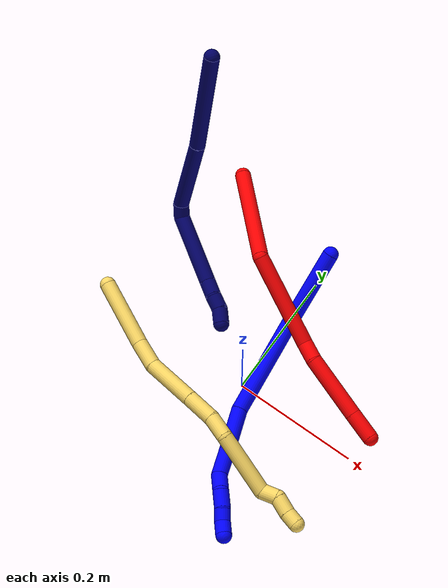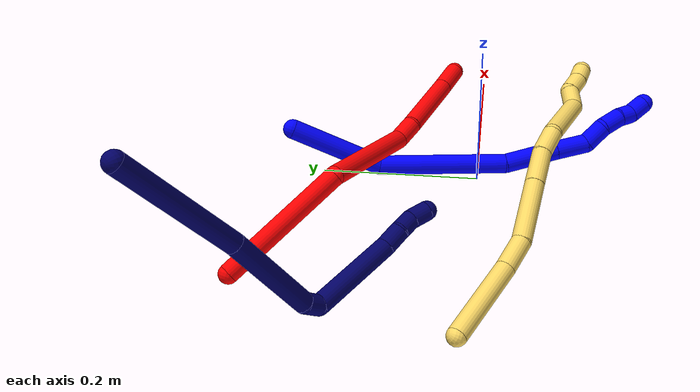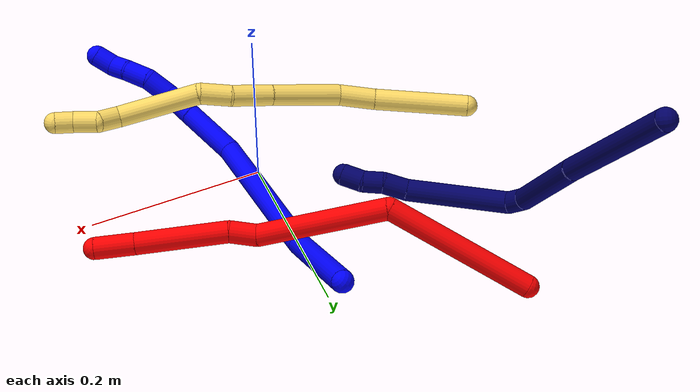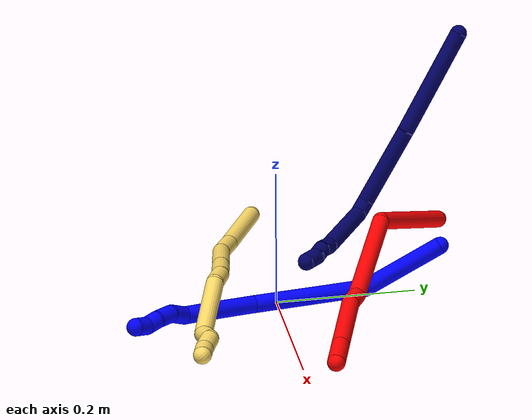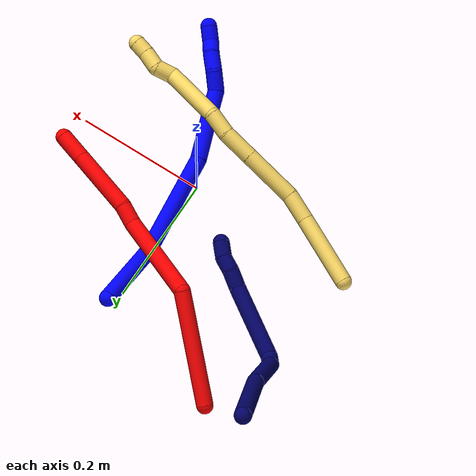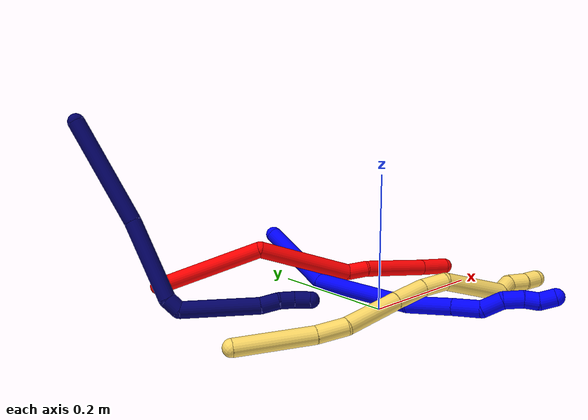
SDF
<sdf version="1.7">
 <world name="default">
  <model name="photoneo_s_sensor">
   <static>1</static>
   <pose>0 0 2 1.57079 1.57079 3.14159</pose>
   <link name="link">
    <inertial><mass>0.1</mass></inertial>
    <sensor name="sensor" type="depth">
     <update_rate>30</update_rate>
     <camera>
      <horizontal_fov>1.22</horizontal_fov>
      <image><width>1920</width><height>1200</height><format>B8G8R8</format></image>
      <clip><near>0.1</near><far>4</far></clip>
      <depth_camera><output>points</output></depth_camera>
     </camera>
     <plugin name="camera_plugin" filename="libgazebo_ros_depth_camera.so">
      <baseline>0.2</baseline>
      <alwaysOn>1</alwaysOn>
      <updateRate>0.0</updateRate>
      <cameraName>camera_ir</cameraName>
      <imageTopicName>/camera/color/image_raw</imageTopicName>
      <cameraInfoTopicName>/camera/color/camera_info</cameraInfoTopicName>
      <depthImageTopicName>/camera/depth/image_raw</depthImageTopicName>
      <depthImageCameraInfoTopicName>/camera/depth/camera_info</depthImageCameraInfoTopicName>
      <pointCloudTopicName>/camera/depth/points</pointCloudTopicName>
      <frameName>fr_optical</frameName>
      <pointCloudCutoff>0.1</pointCloudCutoff>
      <pointCloudCutoffMax>2.0</pointCloudCutoffMax>
      <distortionK1>0</distortionK1>
      <distortionK2>0</distortionK2>
      <distortionK3>0</distortionK3>
      <distortionT1>0</distortionT1>
      <distortionT2>0</distortionT2>
      <CxPrime>0</CxPrime>
      <Cx>0</Cx>
      <Cy>0</Cy>
      <focalLength>0</focalLength>
      <hackBaseline>0</hackBaseline>
     </plugin>
    </sensor>
   </link>
  </model>
  <model name="bin">
   <static>1</static>
   <link name="bottom">
    <collision name="collision-bottom">
     <pose>0 0 -0.01 0 -0 0</pose>
     <geometry><box><size>0.8 0.6 0.02</size></box></geometry>
     <surface>
      <friction><ode><mu>100</mu><mu2>100</mu2></ode></friction>
      <contact><collide_bitmask>65535</collide_bitmask></contact>
     </surface>
    </collision>
   </link>
   <link name="west_wall">
    <collision name="collision-west_wall">
     <pose>-0.41 0 0.1 0 -0 0</pose>
     <geometry><box><size>0.02 0.6 0.2</size></box></geometry>
     <surface>
      <friction><ode><mu>100</mu><mu2>100</mu2></ode></friction>
      <contact><collide_bitmask>65535</collide_bitmask></contact>
     </surface>
    </collision>
   </link>
   <link name="east_wall">
    <collision name="collision-east_wall">
     <pose>0.41 0 0.1 0 -0 0</pose>
     <geometry><box><size>0.02 0.6 0.2</size></box></geometry>
     <surface>
      <friction><ode><mu>100</mu><mu2>100</mu2></ode></friction>
      <contact><collide_bitmask>65535</collide_bitmask></contact>
     </surface>
    </collision>
   </link>
   <link name="south_wall">
    <collision name="collision-south_wall">
     <pose>0 -0.31 0.1 0 -0 0</pose>
     <geometry><box><size>0.8 0.02 0.2</size></box></geometry>
     <surface>
      <friction><ode><mu>100</mu><mu2>100</mu2></ode></friction>
      <contact><collide_bitmask>65535</collide_bitmask></contact>
     </surface>
    </collision>
   </link>
   <link name="north_wall">
    <collision name="collision-north_wall">
     <pose>0 0.31 0.1 0 -0 0</pose>
     <geometry><box><size>0.8 0.02 0.2</size></box></geometry>
     <surface>
      <friction><ode><mu>100</mu><mu2>100</mu2></ode></friction>
      <contact><collide_bitmask>65535</collide_bitmask></contact>
     </surface>
    </collision>
   </link>
  </model>
  <model name="1">
   <static>0</static>
   <link name="1">
    <collision name="collision-cylinder-e_1_1_4">
     <pose>-0.017609 -0.057924 0.006851 1.45307 -0.2932 -0.260957</pose>
     <geometry><cylinder><radius>0.0125</radius><length>0.121856</length></cylinder></geometry>
     <surface>
      <friction><ode><mu>1.16</mu><mu2>1.16</mu2><slip1>0</slip1><slip2>0</slip2></ode></friction>
      <contact><ode><kp>1e+06</kp><kd>1</kd><max_vel>0</max_vel><min_depth>0.001</min_depth></ode></contact>
     </surface>
    </collision>
    <visual name="visual-cylinder-e_1_1_4">
     <pose>-0.017609 -0.057924 0.006851 1.45307 -0.2932 -0.260957</pose>
     <geometry><cylinder><radius>0.0125</radius><length>0.121856</length></cylinder></geometry>
     <material><ambient>0 0 1 1</ambient></material>
    </visual>
    <collision name="collision-cylinder-e_2_4_5">
     <pose>-0.041423 -0.193742 -0.01206 1.89021 -0.075479 -0.104418</pose>
     <geometry><cylinder><radius>0.0125</radius><length>0.164555</length></cylinder></geometry>
     <surface>
      <friction><ode><mu>1.16</mu><mu2>1.16</mu2><slip1>0</slip1><slip2>0</slip2></ode></friction>
      <contact><ode><kp>1e+06</kp><kd>1</kd><max_vel>0</max_vel><min_depth>0.001</min_depth></ode></contact>
     </surface>
    </collision>
    <visual name="visual-cylinder-e_2_4_5">
     <pose>-0.041423 -0.193742 -0.01206 1.89021 -0.075479 -0.104418</pose>
     <geometry><cylinder><radius>0.0125</radius><length>0.164555</length></cylinder></geometry>
     <material><ambient>0 0 1 1</ambient></material>
    </visual>
    <collision name="collision-cylinder-e_3_5_6">
     <pose>-0.053959 -0.300524 -0.055786 2.12709 -0.184014 -0.329042</pose>
     <geometry><cylinder><radius>0.0125</radius><length>0.069204</length></cylinder></geometry>
     <surface>
      <friction><ode><mu>1.16</mu><mu2>1.16</mu2><slip1>0</slip1><slip2>0</slip2></ode></friction>
      <contact><ode><kp>1e+06</kp><kd>1</kd><max_vel>0</max_vel><min_depth>0.001</min_depth></ode></contact>
     </surface>
    </collision>
    <visual name="visual-cylinder-e_3_5_6">
     <pose>-0.053959 -0.300524 -0.055786 2.12709 -0.184014 -0.329042</pose>
     <geometry><cylinder><radius>0.0125</radius><length>0.069204</length></cylinder></geometry>
     <material><ambient>0 0 1 1</ambient></material>
    </visual>
    <collision name="collision-cylinder-e_4_6_7">
     <pose>-0.064103 -0.347033 -0.083996 2.09756 -0.184931 -0.319652</pose>
     <geometry><cylinder><radius>0.0125</radius><length>0.041474</length></cylinder></geometry>
     <surface>
      <friction><ode><mu>1.16</mu><mu2>1.16</mu2><slip1>0</slip1><slip2>0</slip2></ode></friction>
      <contact><ode><kp>1e+06</kp><kd>1</kd><max_vel>0</max_vel><min_depth>0.001</min_depth></ode></contact>
     </surface>
    </collision>
    <visual name="visual-cylinder-e_4_6_7">
     <pose>-0.064103 -0.347033 -0.083996 2.09756 -0.184931 -0.319652</pose>
     <geometry><cylinder><radius>0.0125</radius><length>0.041474</length></cylinder></geometry>
     <material><ambient>0 0 1 1</ambient></material>
    </visual>
    <collision name="collision-cylinder-e_5_7_8">
     <pose>-0.070366 -0.371959 -0.10748 2.63724 -0.16064 -0.605591</pose>
     <geometry><cylinder><radius>0.0125</radius><length>0.030633</length></cylinder></geometry>
     <surface>
      <friction><ode><mu>1.16</mu><mu2>1.16</mu2><slip1>0</slip1><slip2>0</slip2></ode></friction>
      <contact><ode><kp>1e+06</kp><kd>1</kd><max_vel>0</max_vel><min_depth>0.001</min_depth></ode></contact>
     </surface>
    </collision>
    <visual name="visual-cylinder-e_5_7_8">
     <pose>-0.070366 -0.371959 -0.10748 2.63724 -0.16064 -0.605591</pose>
     <geometry><cylinder><radius>0.0125</radius><length>0.030633</length></cylinder></geometry>
     <material><ambient>0 0 1 1</ambient></material>
    </visual>
    <collision name="collision-cylinder-e_6_8_9">
     <pose>-0.079176 -0.387955 -0.130056 2.39224 -0.46254 -1.07909</pose>
     <geometry><cylinder><radius>0.0125</radius><length>0.028508</length></cylinder></geometry>
     <surface>
      <friction><ode><mu>1.16</mu><mu2>1.16</mu2><slip1>0</slip1><slip2>0</slip2></ode></friction>
      <contact><ode><kp>1e+06</kp><kd>1</kd><max_vel>0</max_vel><min_depth>0.001</min_depth></ode></contact>
     </surface>
    </collision>
    <visual name="visual-cylinder-e_6_8_9">
     <pose>-0.079176 -0.387955 -0.130056 2.39224 -0.46254 -1.07909</pose>
     <geometry><cylinder><radius>0.0125</radius><length>0.028508</length></cylinder></geometry>
     <material><ambient>0 0 1 1</ambient></material>
    </visual>
    <collision name="collision-cylinder-e_7_9_10">
     <pose>-0.090798 -0.404099 -0.144248 2.14779 -0.534051 -0.93441</pose>
     <geometry><cylinder><radius>0.0125</radius><length>0.020669</length></cylinder></geometry>
     <surface>
      <friction><ode><mu>1.16</mu><mu2>1.16</mu2><slip1>0</slip1><slip2>0</slip2></ode></friction>
      <contact><ode><kp>1e+06</kp><kd>1</kd><max_vel>0</max_vel><min_depth>0.001</min_depth></ode></contact>
     </surface>
    </collision>
    <visual name="visual-cylinder-e_7_9_10">
     <pose>-0.090798 -0.404099 -0.144248 2.14779 -0.534051 -0.93441</pose>
     <geometry><cylinder><radius>0.0125</radius><length>0.020669</length></cylinder></geometry>
     <material><ambient>0 0 1 1</ambient></material>
    </visual>
    <collision name="collision-cylinder-e_8_10_2">
     <pose>-0.099364 -0.417873 -0.158186 2.53393 -0.290325 -0.872583</pose>
     <geometry><cylinder><radius>0.0125</radius><length>0.0231</length></cylinder></geometry>
     <surface>
      <friction><ode><mu>1.16</mu><mu2>1.16</mu2><slip1>0</slip1><slip2>0</slip2></ode></friction>
      <contact><ode><kp>1e+06</kp><kd>1</kd><max_vel>0</max_vel><min_depth>0.001</min_depth></ode></contact>
     </surface>
    </collision>
    <visual name="visual-cylinder-e_8_10_2">
     <pose>-0.099364 -0.417873 -0.158186 2.53393 -0.290325 -0.872583</pose>
     <geometry><cylinder><radius>0.0125</radius><length>0.0231</length></cylinder></geometry>
     <material><ambient>0 0 1 1</ambient></material>
    </visual>
    <collision name="collision-sphere-2">
     <pose>-0.102671 -0.424192 -0.167272 0 -0 0</pose>
     <geometry><sphere><radius>0.0125</radius></sphere></geometry>
     <surface>
      <friction><ode><mu>1.16</mu><mu2>1.16</mu2><slip1>0</slip1><slip2>0</slip2></ode></friction>
      <contact><ode><kp>1e+06</kp><kd>1</kd><max_vel>0</max_vel><min_depth>0.001</min_depth></ode></contact>
     </surface>
    </collision>
    <visual name="visual-sphere-2">
     <pose>-0.102671 -0.424192 -0.167272 0 -0 0</pose>
     <geometry><sphere><radius>0.0125</radius></sphere></geometry>
     <material><ambient>0 0 1 1</ambient></material>
    </visual>
    <collision name="collision-sphere-10">
     <pose>-0.096058 -0.411555 -0.149101 0 -0 0</pose>
     <geometry><sphere><radius>0.0125</radius></sphere></geometry>
     <surface>
      <friction><ode><mu>1.16</mu><mu2>1.16</mu2><slip1>0</slip1><slip2>0</slip2></ode></friction>
      <contact><ode><kp>1e+06</kp><kd>1</kd><max_vel>0</max_vel><min_depth>0.001</min_depth></ode></contact>
     </surface>
    </collision>
    <visual name="visual-sphere-10">
     <pose>-0.096058 -0.411555 -0.149101 0 -0 0</pose>
     <geometry><sphere><radius>0.0125</radius></sphere></geometry>
     <material><ambient>0 0 1 1</ambient></material>
    </visual>
    <collision name="collision-sphere-9">
     <pose>-0.085537 -0.396644 -0.139396 0 -0 0</pose>
     <geometry><sphere><radius>0.0125</radius></sphere></geometry>
     <surface>
      <friction><ode><mu>1.16</mu><mu2>1.16</mu2><slip1>0</slip1><slip2>0</slip2></ode></friction>
      <contact><ode><kp>1e+06</kp><kd>1</kd><max_vel>0</max_vel><min_depth>0.001</min_depth></ode></contact>
     </surface>
    </collision>
    <visual name="visual-sphere-9">
     <pose>-0.085537 -0.396644 -0.139396 0 -0 0</pose>
     <geometry><sphere><radius>0.0125</radius></sphere></geometry>
     <material><ambient>0 0 1 1</ambient></material>
    </visual>
    <collision name="collision-sphere-4">
     <pose>-0.035219 -0.115849 0.013702 0 -0 0</pose>
     <geometry><sphere><radius>0.0125</radius></sphere></geometry>
     <surface>
      <friction><ode><mu>1.16</mu><mu2>1.16</mu2><slip1>0</slip1><slip2>0</slip2></ode></friction>
      <contact><ode><kp>1e+06</kp><kd>1</kd><max_vel>0</max_vel><min_depth>0.001</min_depth></ode></contact>
     </surface>
    </collision>
    <visual name="visual-sphere-4">
     <pose>-0.035219 -0.115849 0.013702 0 -0 0</pose>
     <geometry><sphere><radius>0.0125</radius></sphere></geometry>
     <material><ambient>0 0 1 1</ambient></material>
    </visual>
    <collision name="collision-sphere-1">
     <geometry><sphere><radius>0.0125</radius></sphere></geometry>
     <surface>
      <friction><ode><mu>1.16</mu><mu2>1.16</mu2><slip1>0</slip1><slip2>0</slip2></ode></friction>
      <contact><ode><kp>1e+06</kp><kd>1</kd><max_vel>0</max_vel><min_depth>0.001</min_depth></ode></contact>
     </surface>
    </collision>
    <visual name="visual-sphere-1">
     <geometry><sphere><radius>0.0125</radius></sphere></geometry>
     <material><ambient>0 0 1 1</ambient></material>
    </visual>
    <collision name="collision-sphere-8">
     <pose>-0.072816 -0.379266 -0.120717 0 -0 0</pose>
     <geometry><sphere><radius>0.0125</radius></sphere></geometry>
     <surface>
      <friction><ode><mu>1.16</mu><mu2>1.16</mu2><slip1>0</slip1><slip2>0</slip2></ode></friction>
      <contact><ode><kp>1e+06</kp><kd>1</kd><max_vel>0</max_vel><min_depth>0.001</min_depth></ode></contact>
     </surface>
    </collision>
    <visual name="visual-sphere-8">
     <pose>-0.072816 -0.379266 -0.120717 0 -0 0</pose>
     <geometry><sphere><radius>0.0125</radius></sphere></geometry>
     <material><ambient>0 0 1 1</ambient></material>
    </visual>
    <collision name="collision-sphere-5">
     <pose>-0.047627 -0.271635 -0.037823 0 -0 0</pose>
     <geometry><sphere><radius>0.0125</radius></sphere></geometry>
     <surface>
      <friction><ode><mu>1.16</mu><mu2>1.16</mu2><slip1>0</slip1><slip2>0</slip2></ode></friction>
      <contact><ode><kp>1e+06</kp><kd>1</kd><max_vel>0</max_vel><min_depth>0.001</min_depth></ode></contact>
     </surface>
    </collision>
    <visual name="visual-sphere-5">
     <pose>-0.047627 -0.271635 -0.037823 0 -0 0</pose>
     <geometry><sphere><radius>0.0125</radius></sphere></geometry>
     <material><ambient>0 0 1 1</ambient></material>
    </visual>
    <collision name="collision-sphere-6">
     <pose>-0.06029 -0.329413 -0.073749 0 -0 0</pose>
     <geometry><sphere><radius>0.0125</radius></sphere></geometry>
     <surface>
      <friction><ode><mu>1.16</mu><mu2>1.16</mu2><slip1>0</slip1><slip2>0</slip2></ode></friction>
      <contact><ode><kp>1e+06</kp><kd>1</kd><max_vel>0</max_vel><min_depth>0.001</min_depth></ode></contact>
     </surface>
    </collision>
    <visual name="visual-sphere-6">
     <pose>-0.06029 -0.329413 -0.073749 0 -0 0</pose>
     <geometry><sphere><radius>0.0125</radius></sphere></geometry>
     <material><ambient>0 0 1 1</ambient></material>
    </visual>
    <collision name="collision-sphere-7">
     <pose>-0.067916 -0.364653 -0.094243 0 -0 0</pose>
     <geometry><sphere><radius>0.0125</radius></sphere></geometry>
     <surface>
      <friction><ode><mu>1.16</mu><mu2>1.16</mu2><slip1>0</slip1><slip2>0</slip2></ode></friction>
      <contact><ode><kp>1e+06</kp><kd>1</kd><max_vel>0</max_vel><min_depth>0.001</min_depth></ode></contact>
     </surface>
    </collision>
    <visual name="visual-sphere-7">
     <pose>-0.067916 -0.364653 -0.094243 0 -0 0</pose>
     <geometry><sphere><radius>0.0125</radius></sphere></geometry>
     <material><ambient>0 0 1 1</ambient></material>
    </visual>
    <inertial>
     <pose>-0.047879 -0.229179 -0.044259 0 -0 0</pose>
     <mass>0.5</mass>
     <inertia>
      <ixx>0.000455</ixx>
      <ixy>0</ixy>
      <ixz>0</ixz>
      <iyy>-0.000236</iyy>
      <iyz>0</iyz>
      <izz>0.000614</izz>
     </inertia>
    </inertial>
   </link>
   <pose>0.000387 0.235698 0.068113 2.87652 -0.6621 -3.12692</pose>
  </model>
  <model name="2">
   <static>0</static>
   <link name="2">
    <collision name="collision-cylinder-e_1_1_4">
     <pose>0.037938 -0.009777 -0.075334 3.01254 0.463181 2.6067</pose>
     <geometry><cylinder><radius>0.0125</radius><length>0.169824</length></cylinder></geometry>
     <surface>
      <friction><ode><mu>1.16</mu><mu2>1.16</mu2><slip1>0</slip1><slip2>0</slip2></ode></friction>
      <contact><ode><kp>1e+06</kp><kd>1</kd><max_vel>0</max_vel><min_depth>0.001</min_depth></ode></contact>
     </surface>
    </collision>
    <visual name="visual-cylinder-e_1_1_4">
     <pose>0.037938 -0.009777 -0.075334 3.01254 0.463181 2.6067</pose>
     <geometry><cylinder><radius>0.0125</radius><length>0.169824</length></cylinder></geometry>
     <material><ambient>1 0 0 1</ambient></material>
    </visual>
    <collision name="collision-cylinder-e_2_4_5">
     <pose>0.100547 -0.077961 -0.19146 2.18046 0.333364 0.624335</pose>
     <geometry><cylinder><radius>0.0125</radius><length>0.150786</length></cylinder></geometry>
     <surface>
      <friction><ode><mu>1.16</mu><mu2>1.16</mu2><slip1>0</slip1><slip2>0</slip2></ode></friction>
      <contact><ode><kp>1e+06</kp><kd>1</kd><max_vel>0</max_vel><min_depth>0.001</min_depth></ode></contact>
     </surface>
    </collision>
    <visual name="visual-cylinder-e_2_4_5">
     <pose>0.100547 -0.077961 -0.19146 2.18046 0.333364 0.624335</pose>
     <geometry><cylinder><radius>0.0125</radius><length>0.150786</length></cylinder></geometry>
     <material><ambient>1 0 0 1</ambient></material>
    </visual>
    <collision name="collision-cylinder-e_3_5_6">
     <pose>0.129725 -0.143504 -0.245373 2.64345 0.293117 1.05172</pose>
     <geometry><cylinder><radius>0.0125</radius><length>0.031201</length></cylinder></geometry>
     <surface>
      <friction><ode><mu>1.16</mu><mu2>1.16</mu2><slip1>0</slip1><slip2>0</slip2></ode></friction>
      <contact><ode><kp>1e+06</kp><kd>1</kd><max_vel>0</max_vel><min_depth>0.001</min_depth></ode></contact>
     </surface>
    </collision>
    <visual name="visual-cylinder-e_3_5_6">
     <pose>0.129725 -0.143504 -0.245373 2.64345 0.293117 1.05172</pose>
     <geometry><cylinder><radius>0.0125</radius><length>0.031201</length></cylinder></geometry>
     <material><ambient>1 0 0 1</ambient></material>
    </visual>
    <collision name="collision-cylinder-e_4_6_7">
     <pose>0.143646 -0.184992 -0.295853 2.39811 0.18339 0.463247</pose>
     <geometry><cylinder><radius>0.0125</radius><length>0.103236</length></cylinder></geometry>
     <surface>
      <friction><ode><mu>1.16</mu><mu2>1.16</mu2><slip1>0</slip1><slip2>0</slip2></ode></friction>
      <contact><ode><kp>1e+06</kp><kd>1</kd><max_vel>0</max_vel><min_depth>0.001</min_depth></ode></contact>
     </surface>
    </collision>
    <visual name="visual-cylinder-e_4_6_7">
     <pose>0.143646 -0.184992 -0.295853 2.39811 0.18339 0.463247</pose>
     <geometry><cylinder><radius>0.0125</radius><length>0.103236</length></cylinder></geometry>
     <material><ambient>1 0 0 1</ambient></material>
    </visual>
    <collision name="collision-cylinder-e_5_7_2">
     <pose>0.156881 -0.233932 -0.349879 2.42256 0.170854 0.448041</pose>
     <geometry><cylinder><radius>0.0125</radius><length>0.044953</length></cylinder></geometry>
     <surface>
      <friction><ode><mu>1.16</mu><mu2>1.16</mu2><slip1>0</slip1><slip2>0</slip2></ode></friction>
      <contact><ode><kp>1e+06</kp><kd>1</kd><max_vel>0</max_vel><min_depth>0.001</min_depth></ode></contact>
     </surface>
    </collision>
    <visual name="visual-cylinder-e_5_7_2">
     <pose>0.156881 -0.233932 -0.349879 2.42256 0.170854 0.448041</pose>
     <geometry><cylinder><radius>0.0125</radius><length>0.044953</length></cylinder></geometry>
     <material><ambient>1 0 0 1</ambient></material>
    </visual>
    <collision name="collision-sphere-2">
     <pose>0.160702 -0.248521 -0.366545 0 -0 0</pose>
     <geometry><sphere><radius>0.0125</radius></sphere></geometry>
     <surface>
      <friction><ode><mu>1.16</mu><mu2>1.16</mu2><slip1>0</slip1><slip2>0</slip2></ode></friction>
      <contact><ode><kp>1e+06</kp><kd>1</kd><max_vel>0</max_vel><min_depth>0.001</min_depth></ode></contact>
     </surface>
    </collision>
    <visual name="visual-sphere-2">
     <pose>0.160702 -0.248521 -0.366545 0 -0 0</pose>
     <geometry><sphere><radius>0.0125</radius></sphere></geometry>
     <material><ambient>1 0 0 1</ambient></material>
    </visual>
    <collision name="collision-sphere-7">
     <pose>0.153059 -0.219344 -0.333213 0 -0 0</pose>
     <geometry><sphere><radius>0.0125</radius></sphere></geometry>
     <surface>
      <friction><ode><mu>1.16</mu><mu2>1.16</mu2><slip1>0</slip1><slip2>0</slip2></ode></friction>
      <contact><ode><kp>1e+06</kp><kd>1</kd><max_vel>0</max_vel><min_depth>0.001</min_depth></ode></contact>
     </surface>
    </collision>
    <visual name="visual-sphere-7">
     <pose>0.153059 -0.219344 -0.333213 0 -0 0</pose>
     <geometry><sphere><radius>0.0125</radius></sphere></geometry>
     <material><ambient>1 0 0 1</ambient></material>
    </visual>
    <collision name="collision-sphere-6">
     <pose>0.134233 -0.15064 -0.258494 0 -0 0</pose>
     <geometry><sphere><radius>0.0125</radius></sphere></geometry>
     <surface>
      <friction><ode><mu>1.16</mu><mu2>1.16</mu2><slip1>0</slip1><slip2>0</slip2></ode></friction>
      <contact><ode><kp>1e+06</kp><kd>1</kd><max_vel>0</max_vel><min_depth>0.001</min_depth></ode></contact>
     </surface>
    </collision>
    <visual name="visual-sphere-6">
     <pose>0.134233 -0.15064 -0.258494 0 -0 0</pose>
     <geometry><sphere><radius>0.0125</radius></sphere></geometry>
     <material><ambient>1 0 0 1</ambient></material>
    </visual>
    <collision name="collision-sphere-5">
     <pose>0.125218 -0.136368 -0.232253 0 -0 0</pose>
     <geometry><sphere><radius>0.0125</radius></sphere></geometry>
     <surface>
      <friction><ode><mu>1.16</mu><mu2>1.16</mu2><slip1>0</slip1><slip2>0</slip2></ode></friction>
      <contact><ode><kp>1e+06</kp><kd>1</kd><max_vel>0</max_vel><min_depth>0.001</min_depth></ode></contact>
     </surface>
    </collision>
    <visual name="visual-sphere-5">
     <pose>0.125218 -0.136368 -0.232253 0 -0 0</pose>
     <geometry><sphere><radius>0.0125</radius></sphere></geometry>
     <material><ambient>1 0 0 1</ambient></material>
    </visual>
    <collision name="collision-sphere-1">
     <geometry><sphere><radius>0.0125</radius></sphere></geometry>
     <surface>
      <friction><ode><mu>1.16</mu><mu2>1.16</mu2><slip1>0</slip1><slip2>0</slip2></ode></friction>
      <contact><ode><kp>1e+06</kp><kd>1</kd><max_vel>0</max_vel><min_depth>0.001</min_depth></ode></contact>
     </surface>
    </collision>
    <visual name="visual-sphere-1">
     <geometry><sphere><radius>0.0125</radius></sphere></geometry>
     <material><ambient>1 0 0 1</ambient></material>
    </visual>
    <collision name="collision-sphere-4">
     <pose>0.075877 -0.019553 -0.150667 0 -0 0</pose>
     <geometry><sphere><radius>0.0125</radius></sphere></geometry>
     <surface>
      <friction><ode><mu>1.16</mu><mu2>1.16</mu2><slip1>0</slip1><slip2>0</slip2></ode></friction>
      <contact><ode><kp>1e+06</kp><kd>1</kd><max_vel>0</max_vel><min_depth>0.001</min_depth></ode></contact>
     </surface>
    </collision>
    <visual name="visual-sphere-4">
     <pose>0.075877 -0.019553 -0.150667 0 -0 0</pose>
     <geometry><sphere><radius>0.0125</radius></sphere></geometry>
     <material><ambient>1 0 0 1</ambient></material>
    </visual>
    <inertial>
     <pose>0.095066 -0.095014 -0.191179 0 -0 0</pose>
     <mass>0.5</mass>
     <inertia><ixx>0.00041</ixx><ixy>0</ixy><ixz>0</ixz><iyy>0.000591</iyy><iyz>0</iyz><izz>1.6e-05</izz></inertia>
    </inertial>
   </link>
   <pose>-0.196965 0.280832 0.011723 2.2508 0.223052 -1.74065</pose>
  </model>
  <model name="5">
   <static>0</static>
   <link name="5">
    <collision name="collision-cylinder-e_1_1_4">
     <pose>0.038802 0.030568 0.024674 -0.891685 0.779226 -0.38756</pose>
     <geometry><cylinder><radius>0.0125</radius><length>0.110432</length></cylinder></geometry>
     <surface>
      <friction><ode><mu>1.16</mu><mu2>1.16</mu2><slip1>0</slip1><slip2>0</slip2></ode></friction>
      <contact><ode><kp>1e+06</kp><kd>1</kd><max_vel>0</max_vel><min_depth>0.001</min_depth></ode></contact>
     </surface>
    </collision>
    <visual name="visual-cylinder-e_1_1_4">
     <pose>0.038802 0.030568 0.024674 -0.891685 0.779226 -0.38756</pose>
     <geometry><cylinder><radius>0.0125</radius><length>0.110432</length></cylinder></geometry>
     <material><ambient>1 0.858824 0.4 1</ambient></material>
    </visual>
    <collision name="collision-cylinder-e_2_4_5">
     <pose>0.092623 0.074589 0.057075 -1.04948 0.769191 -0.460298</pose>
     <geometry><cylinder><radius>0.0125</radius><length>0.043185</length></cylinder></geometry>
     <surface>
      <friction><ode><mu>1.16</mu><mu2>1.16</mu2><slip1>0</slip1><slip2>0</slip2></ode></friction>
      <contact><ode><kp>1e+06</kp><kd>1</kd><max_vel>0</max_vel><min_depth>0.001</min_depth></ode></contact>
     </surface>
    </collision>
    <visual name="visual-cylinder-e_2_4_5">
     <pose>0.092623 0.074589 0.057075 -1.04948 0.769191 -0.460298</pose>
     <geometry><cylinder><radius>0.0125</radius><length>0.043185</length></cylinder></geometry>
     <material><ambient>1 0.858824 0.4 1</ambient></material>
    </visual>
    <collision name="collision-cylinder-e_3_5_6">
     <pose>0.141251 0.112398 0.069538 -1.37871 0.934855 -0.788495</pose>
     <geometry><cylinder><radius>0.0125</radius><length>0.083552</length></cylinder></geometry>
     <surface>
      <friction><ode><mu>1.16</mu><mu2>1.16</mu2><slip1>0</slip1><slip2>0</slip2></ode></friction>
      <contact><ode><kp>1e+06</kp><kd>1</kd><max_vel>0</max_vel><min_depth>0.001</min_depth></ode></contact>
     </surface>
    </collision>
    <visual name="visual-cylinder-e_3_5_6">
     <pose>0.141251 0.112398 0.069538 -1.37871 0.934855 -0.788495</pose>
     <geometry><cylinder><radius>0.0125</radius><length>0.083552</length></cylinder></geometry>
     <material><ambient>1 0.858824 0.4 1</ambient></material>
    </visual>
    <collision name="collision-cylinder-e_4_6_7">
     <pose>0.194512 0.150501 0.07746 -1.34308 0.948019 -0.774306</pose>
     <geometry><cylinder><radius>0.0125</radius><length>0.048388</length></cylinder></geometry>
     <surface>
      <friction><ode><mu>1.16</mu><mu2>1.16</mu2><slip1>0</slip1><slip2>0</slip2></ode></friction>
      <contact><ode><kp>1e+06</kp><kd>1</kd><max_vel>0</max_vel><min_depth>0.001</min_depth></ode></contact>
     </surface>
    </collision>
    <visual name="visual-cylinder-e_4_6_7">
     <pose>0.194512 0.150501 0.07746 -1.34308 0.948019 -0.774306</pose>
     <geometry><cylinder><radius>0.0125</radius><length>0.048388</length></cylinder></geometry>
     <material><ambient>1 0.858824 0.4 1</ambient></material>
    </visual>
    <collision name="collision-cylinder-e_5_7_8">
     <pose>0.227568 0.175143 0.086474 -1.07958 0.826157 -0.513609</pose>
     <geometry><cylinder><radius>0.0125</radius><length>0.03646</length></cylinder></geometry>
     <surface>
      <friction><ode><mu>1.16</mu><mu2>1.16</mu2><slip1>0</slip1><slip2>0</slip2></ode></friction>
      <contact><ode><kp>1e+06</kp><kd>1</kd><max_vel>0</max_vel><min_depth>0.001</min_depth></ode></contact>
     </surface>
    </collision>
    <visual name="visual-cylinder-e_5_7_8">
     <pose>0.227568 0.175143 0.086474 -1.07958 0.826157 -0.513609</pose>
     <geometry><cylinder><radius>0.0125</radius><length>0.03646</length></cylinder></geometry>
     <material><ambient>1 0.858824 0.4 1</ambient></material>
    </visual>
    <collision name="collision-cylinder-e_6_8_9">
     <pose>0.282811 0.19687 0.118153 -0.396821 0.980517 -0.213797</pose>
     <geometry><cylinder><radius>0.0125</radius><length>0.100718</length></cylinder></geometry>
     <surface>
      <friction><ode><mu>1.16</mu><mu2>1.16</mu2><slip1>0</slip1><slip2>0</slip2></ode></friction>
      <contact><ode><kp>1e+06</kp><kd>1</kd><max_vel>0</max_vel><min_depth>0.001</min_depth></ode></contact>
     </surface>
    </collision>
    <visual name="visual-cylinder-e_6_8_9">
     <pose>0.282811 0.19687 0.118153 -0.396821 0.980517 -0.213797</pose>
     <geometry><cylinder><radius>0.0125</radius><length>0.100718</length></cylinder></geometry>
     <material><ambient>1 0.858824 0.4 1</ambient></material>
    </visual>
    <collision name="collision-cylinder-e_7_9_10">
     <pose>0.336869 0.213543 0.141625 -1.95765 1.09437 -1.47228</pose>
     <geometry><cylinder><radius>0.0125</radius><length>0.027503</length></cylinder></geometry>
     <surface>
      <friction><ode><mu>1.16</mu><mu2>1.16</mu2><slip1>0</slip1><slip2>0</slip2></ode></friction>
      <contact><ode><kp>1e+06</kp><kd>1</kd><max_vel>0</max_vel><min_depth>0.001</min_depth></ode></contact>
     </surface>
    </collision>
    <visual name="visual-cylinder-e_7_9_10">
     <pose>0.336869 0.213543 0.141625 -1.95765 1.09437 -1.47228</pose>
     <geometry><cylinder><radius>0.0125</radius><length>0.027503</length></cylinder></geometry>
     <material><ambient>1 0.858824 0.4 1</ambient></material>
    </visual>
    <collision name="collision-cylinder-e_8_10_11">
     <pose>0.359611 0.226309 0.14555 -0.832179 0.843508 -0.391456</pose>
     <geometry><cylinder><radius>0.0125</radius><length>0.028172</length></cylinder></geometry>
     <surface>
      <friction><ode><mu>1.16</mu><mu2>1.16</mu2><slip1>0</slip1><slip2>0</slip2></ode></friction>
      <contact><ode><kp>1e+06</kp><kd>1</kd><max_vel>0</max_vel><min_depth>0.001</min_depth></ode></contact>
     </surface>
    </collision>
    <visual name="visual-cylinder-e_8_10_11">
     <pose>0.359611 0.226309 0.14555 -0.832179 0.843508 -0.391456</pose>
     <geometry><cylinder><radius>0.0125</radius><length>0.028172</length></cylinder></geometry>
     <material><ambient>1 0.858824 0.4 1</ambient></material>
    </visual>
    <collision name="collision-cylinder-e_9_11_2">
     <pose>0.378889 0.238714 0.154991 -1.05123 0.946017 -0.577111</pose>
     <geometry><cylinder><radius>0.0125</radius><length>0.02159</length></cylinder></geometry>
     <surface>
      <friction><ode><mu>1.16</mu><mu2>1.16</mu2><slip1>0</slip1><slip2>0</slip2></ode></friction>
      <contact><ode><kp>1e+06</kp><kd>1</kd><max_vel>0</max_vel><min_depth>0.001</min_depth></ode></contact>
     </surface>
    </collision>
    <visual name="visual-cylinder-e_9_11_2">
     <pose>0.378889 0.238714 0.154991 -1.05123 0.946017 -0.577111</pose>
     <geometry><cylinder><radius>0.0125</radius><length>0.02159</length></cylinder></geometry>
     <material><ambient>1 0.858824 0.4 1</ambient></material>
    </visual>
    <collision name="collision-sphere-2">
     <pose>0.387645 0.244195 0.158126 0 -0 0</pose>
     <geometry><sphere><radius>0.0125</radius></sphere></geometry>
     <surface>
      <friction><ode><mu>1.16</mu><mu2>1.16</mu2><slip1>0</slip1><slip2>0</slip2></ode></friction>
      <contact><ode><kp>1e+06</kp><kd>1</kd><max_vel>0</max_vel><min_depth>0.001</min_depth></ode></contact>
     </surface>
    </collision>
    <visual name="visual-sphere-2">
     <pose>0.387645 0.244195 0.158126 0 -0 0</pose>
     <geometry><sphere><radius>0.0125</radius></sphere></geometry>
     <material><ambient>1 0.858824 0.4 1</ambient></material>
    </visual>
    <collision name="collision-sphere-11">
     <pose>0.370133 0.233233 0.151856 0 -0 0</pose>
     <geometry><sphere><radius>0.0125</radius></sphere></geometry>
     <surface>
      <friction><ode><mu>1.16</mu><mu2>1.16</mu2><slip1>0</slip1><slip2>0</slip2></ode></friction>
      <contact><ode><kp>1e+06</kp><kd>1</kd><max_vel>0</max_vel><min_depth>0.001</min_depth></ode></contact>
     </surface>
    </collision>
    <visual name="visual-sphere-11">
     <pose>0.370133 0.233233 0.151856 0 -0 0</pose>
     <geometry><sphere><radius>0.0125</radius></sphere></geometry>
     <material><ambient>1 0.858824 0.4 1</ambient></material>
    </visual>
    <collision name="collision-sphere-10">
     <pose>0.349089 0.219384 0.139245 0 -0 0</pose>
     <geometry><sphere><radius>0.0125</radius></sphere></geometry>
     <surface>
      <friction><ode><mu>1.16</mu><mu2>1.16</mu2><slip1>0</slip1><slip2>0</slip2></ode></friction>
      <contact><ode><kp>1e+06</kp><kd>1</kd><max_vel>0</max_vel><min_depth>0.001</min_depth></ode></contact>
     </surface>
    </collision>
    <visual name="visual-sphere-10">
     <pose>0.349089 0.219384 0.139245 0 -0 0</pose>
     <geometry><sphere><radius>0.0125</radius></sphere></geometry>
     <material><ambient>1 0.858824 0.4 1</ambient></material>
    </visual>
    <collision name="collision-sphere-9">
     <pose>0.324649 0.207703 0.144004 0 -0 0</pose>
     <geometry><sphere><radius>0.0125</radius></sphere></geometry>
     <surface>
      <friction><ode><mu>1.16</mu><mu2>1.16</mu2><slip1>0</slip1><slip2>0</slip2></ode></friction>
      <contact><ode><kp>1e+06</kp><kd>1</kd><max_vel>0</max_vel><min_depth>0.001</min_depth></ode></contact>
     </surface>
    </collision>
    <visual name="visual-sphere-9">
     <pose>0.324649 0.207703 0.144004 0 -0 0</pose>
     <geometry><sphere><radius>0.0125</radius></sphere></geometry>
     <material><ambient>1 0.858824 0.4 1</ambient></material>
    </visual>
    <collision name="collision-sphere-4">
     <pose>0.077604 0.061136 0.049349 0 -0 0</pose>
     <geometry><sphere><radius>0.0125</radius></sphere></geometry>
     <surface>
      <friction><ode><mu>1.16</mu><mu2>1.16</mu2><slip1>0</slip1><slip2>0</slip2></ode></friction>
      <contact><ode><kp>1e+06</kp><kd>1</kd><max_vel>0</max_vel><min_depth>0.001</min_depth></ode></contact>
     </surface>
    </collision>
    <visual name="visual-sphere-4">
     <pose>0.077604 0.061136 0.049349 0 -0 0</pose>
     <geometry><sphere><radius>0.0125</radius></sphere></geometry>
     <material><ambient>1 0.858824 0.4 1</ambient></material>
    </visual>
    <collision name="collision-sphere-1">
     <geometry><sphere><radius>0.0125</radius></sphere></geometry>
     <surface>
      <friction><ode><mu>1.16</mu><mu2>1.16</mu2><slip1>0</slip1><slip2>0</slip2></ode></friction>
      <contact><ode><kp>1e+06</kp><kd>1</kd><max_vel>0</max_vel><min_depth>0.001</min_depth></ode></contact>
     </surface>
    </collision>
    <visual name="visual-sphere-1">
     <geometry><sphere><radius>0.0125</radius></sphere></geometry>
     <material><ambient>1 0.858824 0.4 1</ambient></material>
    </visual>
    <collision name="collision-sphere-8">
     <pose>0.240974 0.186037 0.092301 0 -0 0</pose>
     <geometry><sphere><radius>0.0125</radius></sphere></geometry>
     <surface>
      <friction><ode><mu>1.16</mu><mu2>1.16</mu2><slip1>0</slip1><slip2>0</slip2></ode></friction>
      <contact><ode><kp>1e+06</kp><kd>1</kd><max_vel>0</max_vel><min_depth>0.001</min_depth></ode></contact>
     </surface>
    </collision>
    <visual name="visual-sphere-8">
     <pose>0.240974 0.186037 0.092301 0 -0 0</pose>
     <geometry><sphere><radius>0.0125</radius></sphere></geometry>
     <material><ambient>1 0.858824 0.4 1</ambient></material>
    </visual>
    <collision name="collision-sphere-5">
     <pose>0.107641 0.088042 0.064801 0 -0 0</pose>
     <geometry><sphere><radius>0.0125</radius></sphere></geometry>
     <surface>
      <friction><ode><mu>1.16</mu><mu2>1.16</mu2><slip1>0</slip1><slip2>0</slip2></ode></friction>
      <contact><ode><kp>1e+06</kp><kd>1</kd><max_vel>0</max_vel><min_depth>0.001</min_depth></ode></contact>
     </surface>
    </collision>
    <visual name="visual-sphere-5">
     <pose>0.107641 0.088042 0.064801 0 -0 0</pose>
     <geometry><sphere><radius>0.0125</radius></sphere></geometry>
     <material><ambient>1 0.858824 0.4 1</ambient></material>
    </visual>
    <collision name="collision-sphere-6">
     <pose>0.17486 0.136754 0.074274 0 -0 0</pose>
     <geometry><sphere><radius>0.0125</radius></sphere></geometry>
     <surface>
      <friction><ode><mu>1.16</mu><mu2>1.16</mu2><slip1>0</slip1><slip2>0</slip2></ode></friction>
      <contact><ode><kp>1e+06</kp><kd>1</kd><max_vel>0</max_vel><min_depth>0.001</min_depth></ode></contact>
     </surface>
    </collision>
    <visual name="visual-sphere-6">
     <pose>0.17486 0.136754 0.074274 0 -0 0</pose>
     <geometry><sphere><radius>0.0125</radius></sphere></geometry>
     <material><ambient>1 0.858824 0.4 1</ambient></material>
    </visual>
    <collision name="collision-sphere-7">
     <pose>0.214163 0.164249 0.080646 0 -0 0</pose>
     <geometry><sphere><radius>0.0125</radius></sphere></geometry>
     <surface>
      <friction><ode><mu>1.16</mu><mu2>1.16</mu2><slip1>0</slip1><slip2>0</slip2></ode></friction>
      <contact><ode><kp>1e+06</kp><kd>1</kd><max_vel>0</max_vel><min_depth>0.001</min_depth></ode></contact>
     </surface>
    </collision>
    <visual name="visual-sphere-7">
     <pose>0.214163 0.164249 0.080646 0 -0 0</pose>
     <geometry><sphere><radius>0.0125</radius></sphere></geometry>
     <material><ambient>1 0.858824 0.4 1</ambient></material>
    </visual>
    <inertial>
     <pose>0.187712 0.133774 0.082285 0 -0 0</pose>
     <mass>0.5</mass>
     <inertia>
      <ixx>0.000118</ixx>
      <ixy>0</ixy>
      <ixz>0</ixz>
      <iyy>0.000182</iyy>
      <iyz>0</iyz>
      <izz>-0.000343</izz>
     </inertia>
    </inertial>
   </link>
   <pose>-0.264336 0.009721 0.01164 2.16538 0.226327 0.27898</pose>
  </model>
  <model name="7">
   <static>0</static>
   <link name="7">
    <collision name="collision-cylinder-e_1_1_4">
     <pose>-0.039382 -0.045009 -0.056875 2.47214 -0.497435 -1.26143</pose>
     <geometry><cylinder><radius>0.0125</radius><length>0.165064</length></cylinder></geometry>
     <surface>
      <friction><ode><mu>1.16</mu><mu2>1.16</mu2><slip1>0</slip1><slip2>0</slip2></ode></friction>
      <contact><ode><kp>1e+06</kp><kd>1</kd><max_vel>0</max_vel><min_depth>0.001</min_depth></ode></contact>
     </surface>
    </collision>
    <visual name="visual-cylinder-e_1_1_4">
     <pose>-0.039382 -0.045009 -0.056875 2.47214 -0.497435 -1.26143</pose>
     <geometry><cylinder><radius>0.0125</radius><length>0.165064</length></cylinder></geometry>
     <material><ambient>0.003922 0 0.403922 1</ambient></material>
    </visual>
    <collision name="collision-cylinder-e_2_4_5">
     <pose>-0.109416 -0.127148 -0.151045 2.3584 -0.527411 -1.15817</pose>
     <geometry><cylinder><radius>0.0125</radius><length>0.121806</length></cylinder></geometry>
     <surface>
      <friction><ode><mu>1.16</mu><mu2>1.16</mu2><slip1>0</slip1><slip2>0</slip2></ode></friction>
      <contact><ode><kp>1e+06</kp><kd>1</kd><max_vel>0</max_vel><min_depth>0.001</min_depth></ode></contact>
     </surface>
    </collision>
    <visual name="visual-cylinder-e_2_4_5">
     <pose>-0.109416 -0.127148 -0.151045 2.3584 -0.527411 -1.15817</pose>
     <geometry><cylinder><radius>0.0125</radius><length>0.121806</length></cylinder></geometry>
     <material><ambient>0.003922 0 0.403922 1</ambient></material>
    </visual>
    <collision name="collision-cylinder-e_3_5_6">
     <pose>-0.143432 -0.168521 -0.1984 2.74255 -0.298841 -1.27991</pose>
     <geometry><cylinder><radius>0.0125</radius><length>0.022848</length></cylinder></geometry>
     <surface>
      <friction><ode><mu>1.16</mu><mu2>1.16</mu2><slip1>0</slip1><slip2>0</slip2></ode></friction>
      <contact><ode><kp>1e+06</kp><kd>1</kd><max_vel>0</max_vel><min_depth>0.001</min_depth></ode></contact>
     </surface>
    </collision>
    <visual name="visual-cylinder-e_3_5_6">
     <pose>-0.143432 -0.168521 -0.1984 2.74255 -0.298841 -1.27991</pose>
     <geometry><cylinder><radius>0.0125</radius><length>0.022848</length></cylinder></geometry>
     <material><ambient>0.003922 0 0.403922 1</ambient></material>
    </visual>
    <collision name="collision-cylinder-e_4_6_7">
     <pose>-0.130528 -0.165536 -0.263496 -3.01102 0.285084 -2.28666</pose>
     <geometry><cylinder><radius>0.0125</radius><length>0.115687</length></cylinder></geometry>
     <surface>
      <friction><ode><mu>1.16</mu><mu2>1.16</mu2><slip1>0</slip1><slip2>0</slip2></ode></friction>
      <contact><ode><kp>1e+06</kp><kd>1</kd><max_vel>0</max_vel><min_depth>0.001</min_depth></ode></contact>
     </surface>
    </collision>
    <visual name="visual-cylinder-e_4_6_7">
     <pose>-0.130528 -0.165536 -0.263496 -3.01102 0.285084 -2.28666</pose>
     <geometry><cylinder><radius>0.0125</radius><length>0.115687</length></cylinder></geometry>
     <material><ambient>0.003922 0 0.403922 1</ambient></material>
    </visual>
    <collision name="collision-cylinder-e_5_7_8">
     <pose>-0.107599 -0.155768 -0.330316 -2.92922 0.504838 -2.35782</pose>
     <geometry><cylinder><radius>0.0125</radius><length>0.027545</length></cylinder></geometry>
     <surface>
      <friction><ode><mu>1.16</mu><mu2>1.16</mu2><slip1>0</slip1><slip2>0</slip2></ode></friction>
      <contact><ode><kp>1e+06</kp><kd>1</kd><max_vel>0</max_vel><min_depth>0.001</min_depth></ode></contact>
     </surface>
    </collision>
    <visual name="visual-cylinder-e_5_7_8">
     <pose>-0.107599 -0.155768 -0.330316 -2.92922 0.504838 -2.35782</pose>
     <geometry><cylinder><radius>0.0125</radius><length>0.027545</length></cylinder></geometry>
     <material><ambient>0.003922 0 0.403922 1</ambient></material>
    </visual>
    <collision name="collision-cylinder-e_6_8_9">
     <pose>-0.098192 -0.151144 -0.352945 -2.95183 0.243693 -1.82028</pose>
     <geometry><cylinder><radius>0.0125</radius><length>0.022759</length></cylinder></geometry>
     <surface>
      <friction><ode><mu>1.16</mu><mu2>1.16</mu2><slip1>0</slip1><slip2>0</slip2></ode></friction>
      <contact><ode><kp>1e+06</kp><kd>1</kd><max_vel>0</max_vel><min_depth>0.001</min_depth></ode></contact>
     </surface>
    </collision>
    <visual name="visual-cylinder-e_6_8_9">
     <pose>-0.098192 -0.151144 -0.352945 -2.95183 0.243693 -1.82028</pose>
     <geometry><cylinder><radius>0.0125</radius><length>0.022759</length></cylinder></geometry>
     <material><ambient>0.003922 0 0.403922 1</ambient></material>
    </visual>
    <collision name="collision-cylinder-e_7_9_2">
     <pose>-0.090698 -0.150392 -0.374889 3.02219 0.401634 2.57037</pose>
     <geometry><cylinder><radius>0.0125</radius><length>0.024291</length></cylinder></geometry>
     <surface>
      <friction><ode><mu>1.16</mu><mu2>1.16</mu2><slip1>0</slip1><slip2>0</slip2></ode></friction>
      <contact><ode><kp>1e+06</kp><kd>1</kd><max_vel>0</max_vel><min_depth>0.001</min_depth></ode></contact>
     </surface>
    </collision>
    <visual name="visual-cylinder-e_7_9_2">
     <pose>-0.090698 -0.150392 -0.374889 3.02219 0.401634 2.57037</pose>
     <geometry><cylinder><radius>0.0125</radius><length>0.024291</length></cylinder></geometry>
     <material><ambient>0.003922 0 0.403922 1</ambient></material>
    </visual>
    <collision name="collision-sphere-2">
     <pose>-0.08595 -0.151724 -0.385989 0 -0 0</pose>
     <geometry><sphere><radius>0.0125</radius></sphere></geometry>
     <surface>
      <friction><ode><mu>1.16</mu><mu2>1.16</mu2><slip1>0</slip1><slip2>0</slip2></ode></friction>
      <contact><ode><kp>1e+06</kp><kd>1</kd><max_vel>0</max_vel><min_depth>0.001</min_depth></ode></contact>
     </surface>
    </collision>
    <visual name="visual-sphere-2">
     <pose>-0.08595 -0.151724 -0.385989 0 -0 0</pose>
     <geometry><sphere><radius>0.0125</radius></sphere></geometry>
     <material><ambient>0.003922 0 0.403922 1</ambient></material>
    </visual>
    <collision name="collision-sphere-9">
     <pose>-0.095446 -0.149061 -0.36379 0 -0 0</pose>
     <geometry><sphere><radius>0.0125</radius></sphere></geometry>
     <surface>
      <friction><ode><mu>1.16</mu><mu2>1.16</mu2><slip1>0</slip1><slip2>0</slip2></ode></friction>
      <contact><ode><kp>1e+06</kp><kd>1</kd><max_vel>0</max_vel><min_depth>0.001</min_depth></ode></contact>
     </surface>
    </collision>
    <visual name="visual-sphere-9">
     <pose>-0.095446 -0.149061 -0.36379 0 -0 0</pose>
     <geometry><sphere><radius>0.0125</radius></sphere></geometry>
     <material><ambient>0.003922 0 0.403922 1</ambient></material>
    </visual>
    <collision name="collision-sphere-4">
     <pose>-0.078764 -0.090018 -0.11375 0 -0 0</pose>
     <geometry><sphere><radius>0.0125</radius></sphere></geometry>
     <surface>
      <friction><ode><mu>1.16</mu><mu2>1.16</mu2><slip1>0</slip1><slip2>0</slip2></ode></friction>
      <contact><ode><kp>1e+06</kp><kd>1</kd><max_vel>0</max_vel><min_depth>0.001</min_depth></ode></contact>
     </surface>
    </collision>
    <visual name="visual-sphere-4">
     <pose>-0.078764 -0.090018 -0.11375 0 -0 0</pose>
     <geometry><sphere><radius>0.0125</radius></sphere></geometry>
     <material><ambient>0.003922 0 0.403922 1</ambient></material>
    </visual>
    <collision name="collision-sphere-1">
     <geometry><sphere><radius>0.0125</radius></sphere></geometry>
     <surface>
      <friction><ode><mu>1.16</mu><mu2>1.16</mu2><slip1>0</slip1><slip2>0</slip2></ode></friction>
      <contact><ode><kp>1e+06</kp><kd>1</kd><max_vel>0</max_vel><min_depth>0.001</min_depth></ode></contact>
     </surface>
    </collision>
    <visual name="visual-sphere-1">
     <geometry><sphere><radius>0.0125</radius></sphere></geometry>
     <material><ambient>0.003922 0 0.403922 1</ambient></material>
    </visual>
    <collision name="collision-sphere-8">
     <pose>-0.100937 -0.153227 -0.3421 0 -0 0</pose>
     <geometry><sphere><radius>0.0125</radius></sphere></geometry>
     <surface>
      <friction><ode><mu>1.16</mu><mu2>1.16</mu2><slip1>0</slip1><slip2>0</slip2></ode></friction>
      <contact><ode><kp>1e+06</kp><kd>1</kd><max_vel>0</max_vel><min_depth>0.001</min_depth></ode></contact>
     </surface>
    </collision>
    <visual name="visual-sphere-8">
     <pose>-0.100937 -0.153227 -0.3421 0 -0 0</pose>
     <geometry><sphere><radius>0.0125</radius></sphere></geometry>
     <material><ambient>0.003922 0 0.403922 1</ambient></material>
    </visual>
    <collision name="collision-sphere-5">
     <pose>-0.140069 -0.164279 -0.18834 0 -0 0</pose>
     <geometry><sphere><radius>0.0125</radius></sphere></geometry>
     <surface>
      <friction><ode><mu>1.16</mu><mu2>1.16</mu2><slip1>0</slip1><slip2>0</slip2></ode></friction>
      <contact><ode><kp>1e+06</kp><kd>1</kd><max_vel>0</max_vel><min_depth>0.001</min_depth></ode></contact>
     </surface>
    </collision>
    <visual name="visual-sphere-5">
     <pose>-0.140069 -0.164279 -0.18834 0 -0 0</pose>
     <geometry><sphere><radius>0.0125</radius></sphere></geometry>
     <material><ambient>0.003922 0 0.403922 1</ambient></material>
    </visual>
    <collision name="collision-sphere-6">
     <pose>-0.146796 -0.172763 -0.20846 0 -0 0</pose>
     <geometry><sphere><radius>0.0125</radius></sphere></geometry>
     <surface>
      <friction><ode><mu>1.16</mu><mu2>1.16</mu2><slip1>0</slip1><slip2>0</slip2></ode></friction>
      <contact><ode><kp>1e+06</kp><kd>1</kd><max_vel>0</max_vel><min_depth>0.001</min_depth></ode></contact>
     </surface>
    </collision>
    <visual name="visual-sphere-6">
     <pose>-0.146796 -0.172763 -0.20846 0 -0 0</pose>
     <geometry><sphere><radius>0.0125</radius></sphere></geometry>
     <material><ambient>0.003922 0 0.403922 1</ambient></material>
    </visual>
    <collision name="collision-sphere-7">
     <pose>-0.11426 -0.158308 -0.318532 0 -0 0</pose>
     <geometry><sphere><radius>0.0125</radius></sphere></geometry>
     <surface>
      <friction><ode><mu>1.16</mu><mu2>1.16</mu2><slip1>0</slip1><slip2>0</slip2></ode></friction>
      <contact><ode><kp>1e+06</kp><kd>1</kd><max_vel>0</max_vel><min_depth>0.001</min_depth></ode></contact>
     </surface>
    </collision>
    <visual name="visual-sphere-7">
     <pose>-0.11426 -0.158308 -0.318532 0 -0 0</pose>
     <geometry><sphere><radius>0.0125</radius></sphere></geometry>
     <material><ambient>0.003922 0 0.403922 1</ambient></material>
    </visual>
    <inertial>
     <pose>-0.091215 -0.114602 -0.17808 0 -0 0</pose>
     <mass>0.5</mass>
     <inertia>
      <ixx>-0.000481</ixx>
      <ixy>0</ixy>
      <ixz>0</ixz>
      <iyy>-0.000437</iyy>
      <iyz>0</iyz>
      <izz>0.000476</izz>
     </inertia>
    </inertial>
   </link>
   <pose>-0.2899 0.328851 0.269415 0.865579 -1.07075 -1.52362</pose>
  </model>
 </world>
</sdf>
